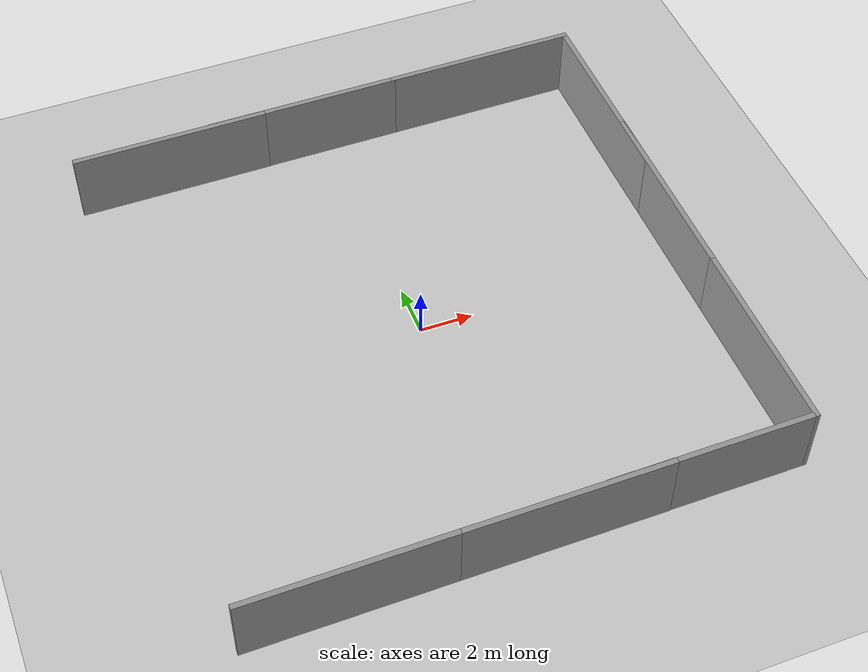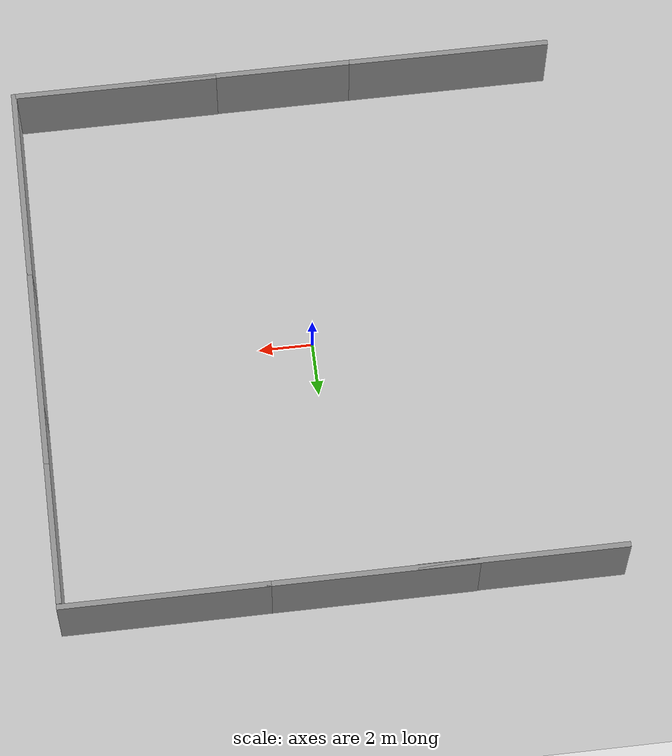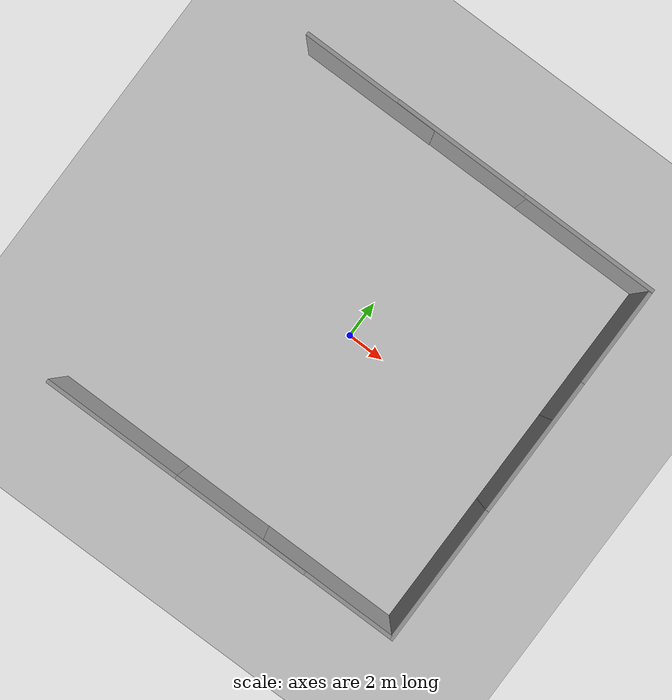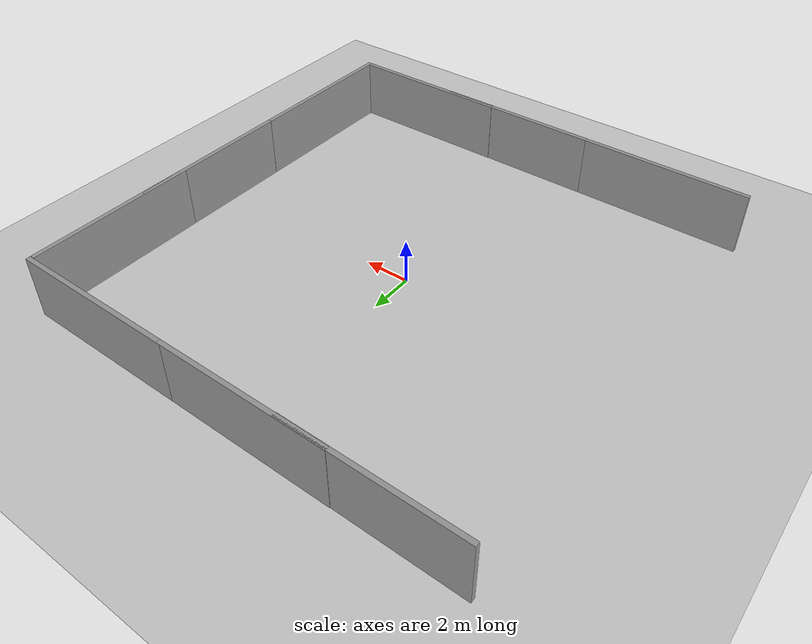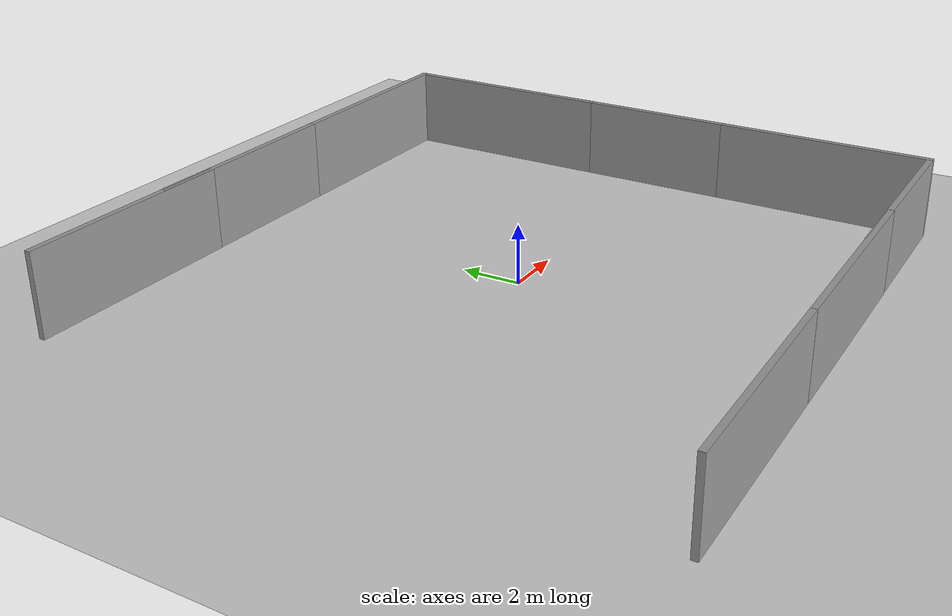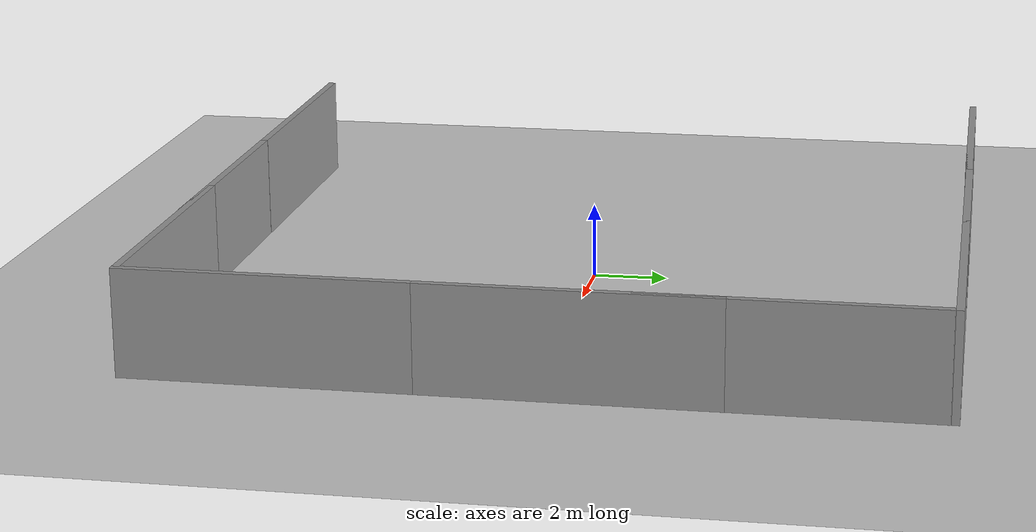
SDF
<sdf version="1.6">
 <world name="default">
  <light name="sun" type="directional">
   <pose>0 0 10 0 -0 0</pose>
   <diffuse>0.8 0.8 0.8 1</diffuse>
   <specular>0.2 0.2 0.2 1</specular>
   <attenuation>
    <range>1000</range>
    <constant>0.9</constant>
    <linear>0.01</linear>
    <quadratic>0.001</quadratic>
   </attenuation>
   <direction>-0.5 0.1 -0.9</direction>
  </light>
  <model name="ground_plane">
   <static>1</static>
   <link name="link">
    <collision name="collision">
     <geometry><plane><normal>0 0 1</normal><size>100 100</size></plane></geometry>
     <surface><friction><ode><mu>100</mu><mu2>50</mu2></ode></friction></surface>
    </collision>
    <visual name="visual">
     <cast_shadows>0</cast_shadows>
     <geometry><plane><normal>0 0 1</normal><size>100 100</size></plane></geometry>
     <material>
      <script><uri>file://media/materials/scripts/gazebo.material</uri><name>Gazebo/Grey</name></script>
     </material>
    </visual>
   </link>
  </model>
  <gravity>0 0 -9.8</gravity>
  <magnetic_field>6e-06 2.3e-05 -4.2e-05</magnetic_field>
  <atmosphere type="adiabatic"/>
  <physics name="default_physics" default="0" type="ode">
   <max_step_size>0.001</max_step_size>
   <real_time_factor>1</real_time_factor>
   <real_time_update_rate>1000</real_time_update_rate>
  </physics>
  <scene><ambient>0.4 0.4 0.4 1</ambient><background>0.7 0.7 0.7 1</background><shadows>1</shadows></scene>
  <spherical_coordinates>
   <surface_model>EARTH_WGS84</surface_model>
   <latitude_deg>0</latitude_deg>
   <longitude_deg>0</longitude_deg>
   <elevation>0</elevation>
   <heading_deg>0</heading_deg>
  </spherical_coordinates>
  <model name="grey_wall">
   <static>1</static>
   <link name="link">
    <pose>0 0 1.4 0 -0 0</pose>
    <collision name="collision"><geometry><box><size>7.5 0.2 2.8</size></box></geometry></collision>
    <visual name="visual">
     <cast_shadows>0</cast_shadows>
     <geometry><box><size>7.5 0.2 2.8</size></box></geometry>
     <material>
      <script>
       <uri>model://grey_wall/materials/scripts</uri>
       <uri>model://grey_wall/materials/textures</uri>
       <name>vrc/grey_wall</name>
      </script>
     </material>
    </visual>
   </link>
   <pose>-6.29084 -10.1131 0 0 -0 0</pose>
  </model>
  <model name="grey_wall_0">
   <static>1</static>
   <link name="link">
    <pose>0 0 1.4 0 -0 0</pose>
    <collision name="collision"><geometry><box><size>7.5 0.2 2.8</size></box></geometry></collision>
    <visual name="visual">
     <cast_shadows>0</cast_shadows>
     <geometry><box><size>7.5 0.2 2.8</size></box></geometry>
     <material>
      <script>
       <uri>model://grey_wall/materials/scripts</uri>
       <uri>model://grey_wall/materials/textures</uri>
       <name>vrc/grey_wall</name>
      </script>
     </material>
    </visual>
   </link>
   <pose>1.20319 -10.1148 0 0 -0 0</pose>
  </model>
  <model name="grey_wall_1">
   <static>1</static>
   <link name="link">
    <pose>0 0 1.4 0 -0 0</pose>
    <collision name="collision"><geometry><box><size>7.5 0.2 2.8</size></box></geometry></collision>
    <visual name="visual">
     <cast_shadows>0</cast_shadows>
     <geometry><box><size>7.5 0.2 2.8</size></box></geometry>
     <material>
      <script>
       <uri>model://grey_wall/materials/scripts</uri>
       <uri>model://grey_wall/materials/textures</uri>
       <name>vrc/grey_wall</name>
      </script>
     </material>
    </visual>
   </link>
   <pose>6.21263 -10.1014 0 0 -0 0</pose>
  </model>
  <model name="grey_wall_2_clone">
   <static>1</static>
   <link name="link">
    <pose>0 0 1.4 0 -0 0</pose>
    <collision name="collision"><geometry><box><size>7.5 0.2 2.8</size></box></geometry></collision>
    <visual name="visual">
     <cast_shadows>0</cast_shadows>
     <geometry><box><size>7.5 0.2 2.8</size></box></geometry>
     <material>
      <script>
       <uri>model://grey_wall/materials/scripts</uri>
       <uri>model://grey_wall/materials/textures</uri>
       <name>vrc/grey_wall</name>
      </script>
     </material>
    </visual>
   </link>
   <pose>10.0221 -6.45087 0 0 -0 1.5707</pose>
  </model>
  <model name="grey_wall_2_clone_0">
   <static>1</static>
   <link name="link">
    <pose>0 0 1.4 0 -0 0</pose>
    <collision name="collision"><geometry><box><size>7.5 0.2 2.8</size></box></geometry></collision>
    <visual name="visual">
     <cast_shadows>0</cast_shadows>
     <geometry><box><size>7.5 0.2 2.8</size></box></geometry>
     <material>
      <script>
       <uri>model://grey_wall/materials/scripts</uri>
       <uri>model://grey_wall/materials/textures</uri>
       <name>vrc/grey_wall</name>
      </script>
     </material>
    </visual>
   </link>
   <pose>10.0247 0.983588 0 0 -0 1.5707</pose>
  </model>
  <model name="grey_wall_2_clone_1">
   <static>1</static>
   <link name="link">
    <pose>0 0 1.4 0 -0 0</pose>
    <collision name="collision"><geometry><box><size>7.5 0.2 2.8</size></box></geometry></collision>
    <visual name="visual">
     <cast_shadows>0</cast_shadows>
     <geometry><box><size>7.5 0.2 2.8</size></box></geometry>
     <material>
      <script>
       <uri>model://grey_wall/materials/scripts</uri>
       <uri>model://grey_wall/materials/textures</uri>
       <name>vrc/grey_wall</name>
      </script>
     </material>
    </visual>
   </link>
   <pose>10.0216 6.24873 0 0 -0 1.5707</pose>
  </model>
  <model name="grey_wall_3">
   <static>1</static>
   <link name="link">
    <pose>0 0 1.4 0 -0 0</pose>
    <collision name="collision"><geometry><box><size>7.5 0.2 2.8</size></box></geometry></collision>
    <visual name="visual">
     <cast_shadows>0</cast_shadows>
     <geometry><box><size>7.5 0.2 2.8</size></box></geometry>
     <material>
      <script>
       <uri>model://grey_wall/materials/scripts</uri>
       <uri>model://grey_wall/materials/textures</uri>
       <name>vrc/grey_wall</name>
      </script>
     </material>
    </visual>
   </link>
   <pose>6.37046 10.1132 0 0 -0 0</pose>
  </model>
  <model name="grey_wall_4">
   <static>1</static>
   <link name="link">
    <pose>0 0 1.4 0 -0 0</pose>
    <collision name="collision"><geometry><box><size>7.5 0.2 2.8</size></box></geometry></collision>
    <visual name="visual">
     <cast_shadows>0</cast_shadows>
     <geometry><box><size>7.5 0.2 2.8</size></box></geometry>
     <material>
      <script>
       <uri>model://grey_wall/materials/scripts</uri>
       <uri>model://grey_wall/materials/textures</uri>
       <name>vrc/grey_wall</name>
      </script>
     </material>
    </visual>
   </link>
   <pose>-0.977248 10.1119 0 0 -0 0</pose>
  </model>
  <model name="grey_wall_4_clone">
   <static>1</static>
   <link name="link">
    <pose>0 0 1.4 0 -0 0</pose>
    <collision name="collision"><geometry><box><size>7.5 0.2 2.8</size></box></geometry></collision>
    <visual name="visual">
     <cast_shadows>0</cast_shadows>
     <geometry><box><size>7.5 0.2 2.8</size></box></geometry>
     <material>
      <script>
       <uri>model://grey_wall/materials/scripts</uri>
       <uri>model://grey_wall/materials/textures</uri>
       <name>vrc/grey_wall</name>
      </script>
     </material>
    </visual>
   </link>
   <pose>-6.27739 10.0966 0 0 -0 0</pose>
  </model>
 </world>
</sdf>
